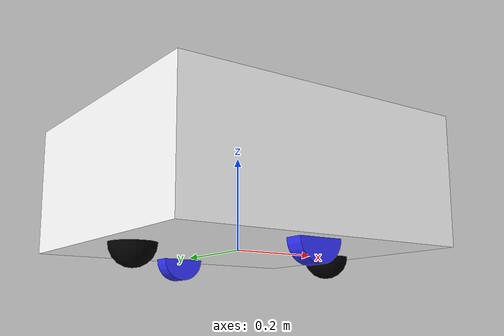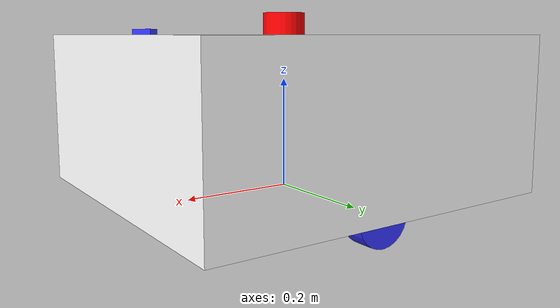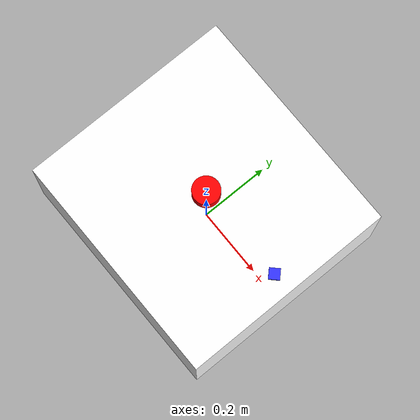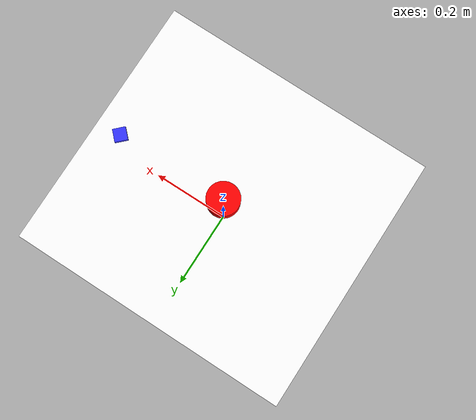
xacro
<?xml version="1.0"?>
<robot xmlns:xacro="http://www.ros.org/wiki/xacro"  name="robot">

    <xacro:include filename="robot_core.xacro" />

    <xacro:include filename="gazebo_control.xacro" />

    <xacro:include filename="lidar.xacro" />

</robot>

<!-- This file was generated and altered by Ben Cheshire, using the tutorial by Josh Ewans (https://articulatedrobotics.xyz/mobile-robot-full-list/)-->
<!-- This is the main urdf file that is read by all other programs, however nothing is defined here, it only references other files-->

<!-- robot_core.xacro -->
<robot xmlns:xacro="http://www.ros.org/wiki/xacro" >

    <xacro:include filename="materials.xacro" />
    <xacro:include filename="inertial_macros.xacro" />

    <!-- BASE LINK-->

    <link name="base_link">

    </link>

    <joint name="base_footprint_joint" type="fixed" >
        <parent link="base_link" />
        <child link="base_footprint" />
        <origin xyz="0 0 0" rpy="0 0 0" />
    </joint>

    <link name="base_footprint">

    </link>

    <!-- CHASSIS LINK -->

    <joint name="chassis_joint" type="fixed">
        <parent link="base_link" />
        <child link="chassis" />
        <origin xyz="-0.33 0 0" />
    </joint>

    <link name="chassis">
        <visual>
            <!-- box origin -->
            <origin xyz="0.33 0 0.1405" />
            <!-- stl origin -->
            <!--origin xyz="0.125 0 0" /-->
            <geometry>
                <box size="0.66 0.61 0.281" />
                <!-- importing a mesh of the bunker mini robot -->
                <!--mesh filename="package://bunker_mini/description/bunker_mini.stl"/-->
            </geometry>
            <material name="white" />
        </visual>
        <collision>
            <origin xyz="0.33 0 0.1405" />
            <geometry>
                <box size="0.66 0.61 0.281" />
            </geometry>
        </collision>
        <xacro:inertial_box mass="2" x="0.66" y="0.61" z="0.281">
            <origin xyz="0.33 0 0.1405" rpy="0 0 0" />
        </xacro:inertial_box>
    </link>

    <gazebo reference="chassis">
        <material>Gazebo/White</material>
    </gazebo>

    <joint name="front_diamond_joint" type="fixed">
        <parent link="base_link" />
        <child link="front_diamond" />
        <origin xyz="-0.33 0 0" />

    </joint>

    <link name="front_diamond">
        <visual>
            <!-- front diamond origin -->
            <origin xyz="0.6 0 0.28" rpy="0 0 ${pi/4}" />
            <geometry>
                <box size="0.03 0.03 0.02" />
            </geometry>
            <material name="blue" />
        </visual>
        <collision>
            <origin xyz="0.6 0 0.28" rpy="0 0 ${pi/4}" />
            <geometry>
                <box size="0.03 0.03 0.02" />
            </geometry>
        </collision>
        <xacro:inertial_box mass="0.1" x="0.03" y="0.03" z="0.02">
            <origin xyz="0.52 0 0.28" rpy="0 0 ${pi/4}" />
        </xacro:inertial_box>
    </link>

    <gazebo reference="front_diamond">
        <material>Gazebo/Blue</material>
    </gazebo>

    <!-- LEFT WHEEL LINK -->

    <joint name="left_wheel_joint" type="continuous">
        <parent link="base_link" />
        <child link="left_wheel" />
        <!-- CHANGE WHEEL OFFSET TO MATCH REAL ROBOT -->
        <origin xyz="0 0.25 0" rpy="${-pi/2} 0 0" />
        <axis xyz=" 0 0 1" />
    </joint>

    <link name="left_wheel">
        <visual>
            <geometry>
                <!-- CHANGE WHEEL RADIUS TO MATCH UP WITH REAL ROBOT FOR ODOM DATA -->
                <cylinder radius="0.05" length="0.04" />
            </geometry>
            <material name="blue" />
        </visual>
        <collision>
            <geometry>
                <!-- CHANGE WHEEL RADIUS TO MATCH UP WITH REAL ROBOT FOR ODOM DATA -->
                <cylinder radius="0.05" length="0.04" />
            </geometry>
        </collision>
        <xacro:inertial_cylinder mass="0.1" length="0.04" radius="0.05">
            <origin xyz="0 0 0 " rpy="0 0 0" />
        </xacro:inertial_cylinder>
    </link>

    <gazebo reference="left_wheel">
        <material>Gazebo/Blue</material>
    </gazebo>

    <!-- RIGHT WHEEL LINK -->

    <joint name="right_wheel_joint" type="continuous">
        <parent link="base_link" />
        <child link="right_wheel" />
        <!-- CHANGE WHEEL OFFSET TO MATCH REAL ROBOT -->
        <origin xyz="0 -0.25 0" rpy="${pi/2} 0 0" />
        <axis xyz=" 0 0 -1" />
    </joint>

    <link name="right_wheel">
        <visual>
            <geometry>
                <!-- CHANGE WHEEL RADIUS TO MATCH UP WITH REAL ROBOT FOR ODOM DATA -->
                <cylinder radius="0.05" length="0.04" />
            </geometry>
            <material name="blue" />
        </visual>
        <collision>
            <geometry>
                <!-- CHANGE WHEEL RADIUS TO MATCH UP WITH REAL ROBOT FOR ODOM DATA -->
                <cylinder radius="0.05" length="0.04" />
            </geometry>
        </collision>
        <xacro:inertial_cylinder mass="0.1" length="0.04" radius="0.05">
            <origin xyz="0 0 0 " rpy="0 0 0" />
        </xacro:inertial_cylinder>
    </link>

    <gazebo reference="right_wheel">
        <material>Gazebo/Blue</material>
    </gazebo>

    <!-- FRONT CASTER WHEEL LINK -->

    <joint name="front_caster_wheel_joint" type="fixed">
        <parent link="base_link" />
        <child link="front_caster_wheel" />
        <origin xyz="0.25 0 0" />
    </joint>

    <link name="front_caster_wheel">
        <visual>
            <geometry>
                <sphere radius="0.05" />
            </geometry>
            <material name="black" />
        </visual>
        <collision>
            <geometry>
                <sphere radius="0.05" />
            </geometry>
        </collision>
        <xacro:inertial_sphere mass="0.1" radius="0.05">
            <origin xyz="0 0 0" rpy="0 0 0" />
        </xacro:inertial_sphere>
    </link>

    <gazebo reference="front_caster_wheel">
        <material>Gazebo/Black</material>
        <mu1 value="0.001" />
        <mu2 value="0.001" />
    </gazebo>

    <!-- REAR CASTER WHEEL LINK -->

    <joint name="rear_caster_wheel_joint" type="fixed">
        <parent link="base_link" />
        <child link="rear_caster_wheel" />
        <origin xyz="-0.25 0 0" />
    </joint>

    <link name="rear_caster_wheel">
        <visual>
            <geometry>
                <sphere radius="0.05" />
            </geometry>
            <material name="black" />
        </visual>
        <collision>
            <geometry>
                <sphere radius="0.05" />
            </geometry>
        </collision>
        <xacro:inertial_sphere mass="0.1" radius="0.05">
            <origin xyz="0 0 0" rpy="0 0 0" />
        </xacro:inertial_sphere>
    </link>

    <gazebo reference="rear_caster_wheel">
        <material>Gazebo/Black</material>
        <mu1 value="0.001" />
        <mu2 value="0.001" />
    </gazebo>

</robot>

<!-- This file was generated and altered by Ben Cheshire, using the tutorial by Josh Ewans (https://articulatedrobotics.xyz/mobile-robot-full-list/)-->
<!-- This is where the main robot description is created, and all of the physical parameters of the robot are defined -->

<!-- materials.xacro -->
<robot xmlns:xacro="http://www.ros.org/wiki/xacro" >

    <material name="white">
        <color rgba="1 1 1 1" />
    </material>

    <material name="orange">
        <color rgba="1 0.3 0.1 1" />
    </material>

    <material name="blue">
        <color rgba="0.2 0.2 1 1" />
    </material>

    <material name="black">
        <color rgba="0 0 0 1" />
    </material>

    <material name="red">
        <color rgba="1 0 0 1" />
    </material>

    <material name="transparent">
        <color rgba="0 0 0 0" />
    </material>

</robot>

<!-- This file was generated and altered by Ben Cheshire, using the tutorial by Josh Ewans (https://articulatedrobotics.xyz/mobile-robot-full-list/)-->
<!-- A basic xacro file to define some materials to be used elsewhere -->

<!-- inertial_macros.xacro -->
<robot xmlns:xacro="http://www.ros.org/wiki/xacro" >

    <!-- Specify some standard inertial calculations https://en.wikipedia.org/wiki/List_of_moments_of_inertia -->
    <!-- These make use of xacro's mathematical functionality -->

    <xacro:macro name="inertial_sphere" params="mass radius *origin">
        <inertial>
            <xacro:insert_block name="origin"/>
            <mass value="${mass}" />
            <inertia ixx="${(2/5) * mass * (radius*radius)}" ixy="0.0" ixz="0.0"
                    iyy="${(2/5) * mass * (radius*radius)}" iyz="0.0"
                    izz="${(2/5) * mass * (radius*radius)}" />
        </inertial>
    </xacro:macro>

    <xacro:macro name="inertial_box" params="mass x y z *origin">
        <inertial>
            <xacro:insert_block name="origin"/>
            <mass value="${mass}" />
            <inertia ixx="${(1/12) * mass * (y*y+z*z)}" ixy="0.0" ixz="0.0"
                    iyy="${(1/12) * mass * (x*x+z*z)}" iyz="0.0"
                    izz="${(1/12) * mass * (x*x+y*y)}" />
        </inertial>
    </xacro:macro>

    <xacro:macro name="inertial_cylinder" params="mass length radius *origin">
        <inertial>
            <xacro:insert_block name="origin"/>
            <mass value="${mass}" />
            <inertia ixx="${(1/12) * mass * (3*radius*radius + length*length)}" ixy="0.0" ixz="0.0"
                    iyy="${(1/12) * mass * (3*radius*radius + length*length)}" iyz="0.0"
                    izz="${(1/2) * mass * (radius*radius)}" />
        </inertial>
    </xacro:macro>

</robot>

<!-- This file was generated and altered by Ben Cheshire, using the tutorial by Josh Ewans (https://articulatedrobotics.xyz/mobile-robot-full-list/)-->
<!-- A file to calculate the inertial properties required by gazebo -->

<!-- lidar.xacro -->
<robot xmlns:xacro="http://www.ros.org/wiki/xacro" >

    <joint name="laser_joint" type="fixed">
        <parent link="chassis" />
        <child link="laser_frame" />
        <origin xyz="0.33 0 0.3" rpy="0 0 0 " />
    </joint>

    <link name="laser_frame">
        <visual>
            <geometry>
                <cylinder radius="0.038" length="0.041" />
            </geometry>
            <material name="red" />
        </visual>
        <collision>
            <geometry>
                <cylinder radius="0.038" length="0.041" />
            </geometry>
        </collision>
        <xacro:inertial_cylinder mass="0.1" length="0.041" radius="0.038">
            <origin xyz="0 0 0 " rpy="0 0 0" />
        </xacro:inertial_cylinder>
    </link>

    <gazebo reference="laser_frame">
        <sensor name="rplidar_a2m12" type="ray">
            <pose> 0 0 0 0 0 0 </pose>
            <visualize>true</visualize>
            <update_rate>10</update_rate>
            <ray>
                <scan>
                    <horizontal>
                        <samples>360</samples>
                        <!-- potentially comment out the resolution tags -->
                        <resolution>1</resolution>
                        <min_angle>-3.14</min_angle>
                        <max_angle>3.14</max_angle>
                    </horizontal>
                </scan>
                <range>
                    <min>0.3</min>
                    <max>12</max>
                    <!-- potentially comment out the resolution tags -->
                    <resolution>1</resolution>
                </range>
            </ray>
            <plugin name="laser_controller" filename="./src/bunker_mini/plugins/libgazebo_ros_ray_sensor.so">
                <ros>
                    <argument>~/out:=scan</argument>
                </ros>
                <output_type>sensor_msgs/LaserScan</output_type>
                <frame_name>laser_frame</frame_name>
            </plugin>
        </sensor>
        <material>Gazebo/Red</material>
    </gazebo>

</robot>

<!-- This file was generated and altered by Ben Cheshire, using the tutorial by Josh Ewans (https://articulatedrobotics.xyz/mobile-robot-full-list/)-->
<!-- A script to define the location, size, and functionality of the lidar sensor used in simulation -->
